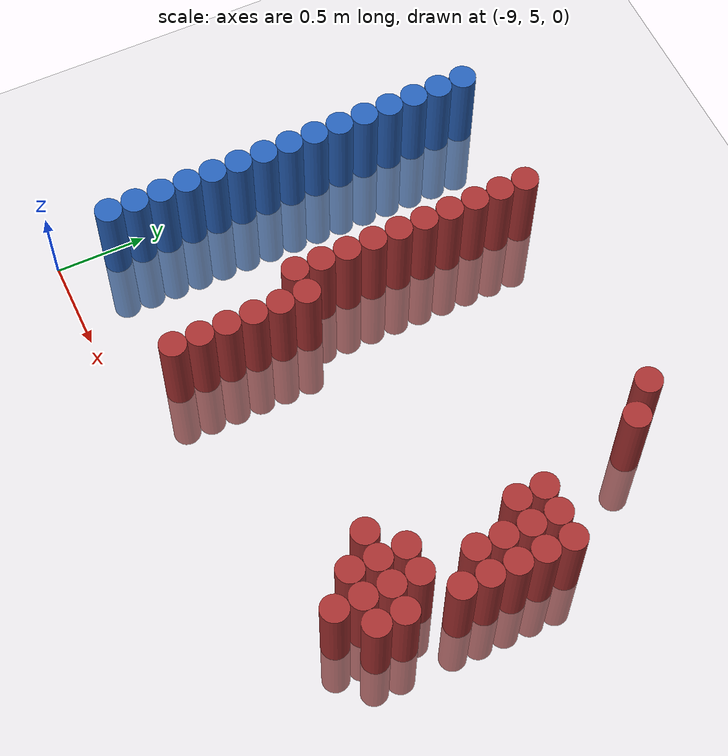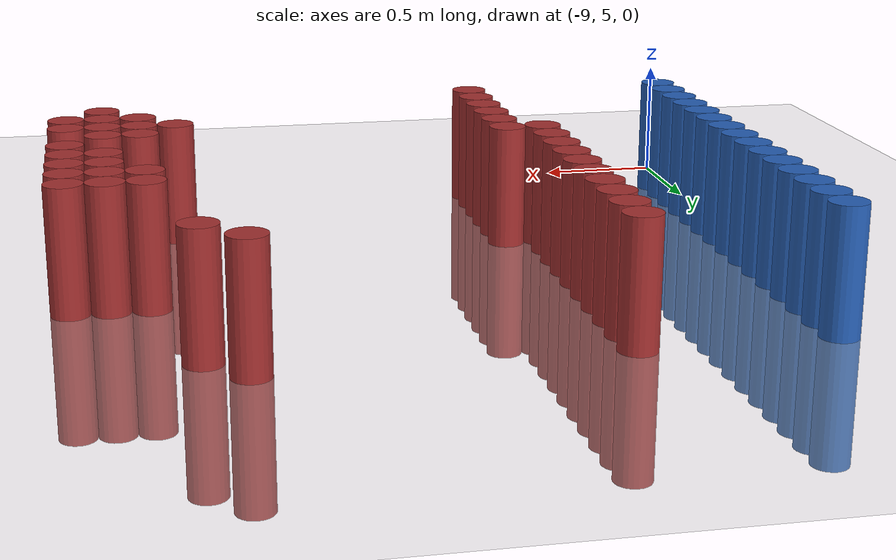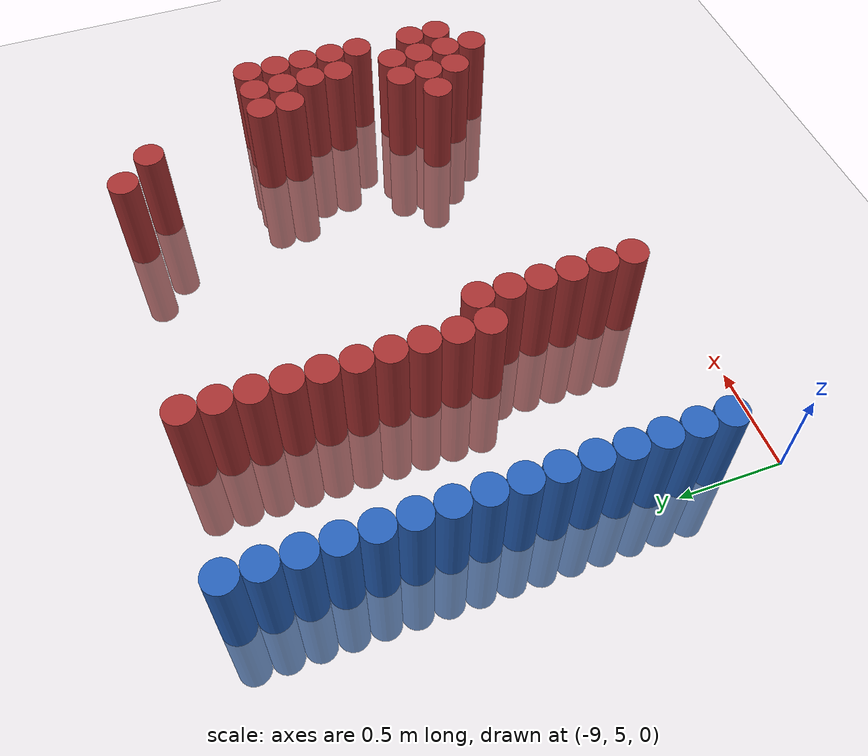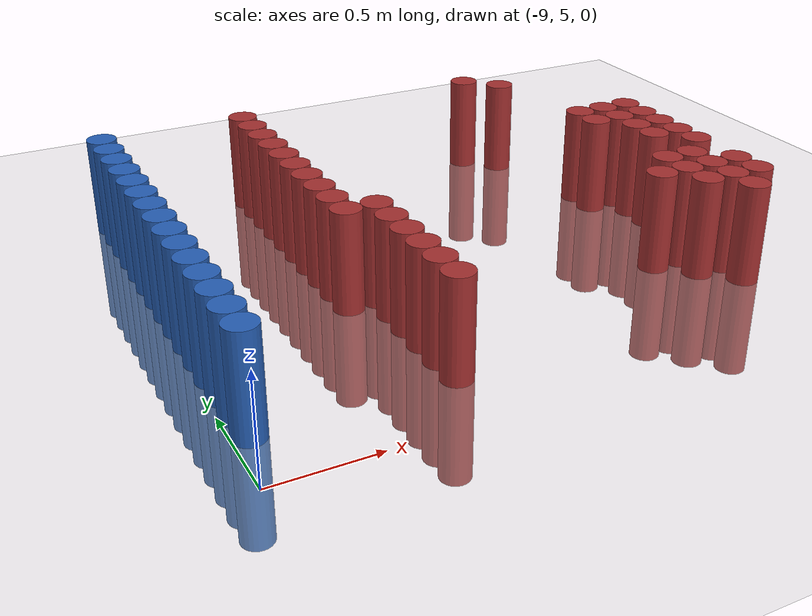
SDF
<sdf version="1.6">
 <world name="default">
  <model name="ground_plane">
   <static>1</static>
   <link name="link">
    <collision name="collision">
     <geometry><plane><normal>0 0 1</normal><size>100 100</size></plane></geometry>
     <surface><friction><ode><mu>100</mu><mu2>50</mu2></ode></friction></surface>
    </collision>
    <visual name="visual">
     <cast_shadows>0</cast_shadows>
     <geometry><plane><normal>0 0 1</normal><size>100 100</size></plane></geometry>
     <material>
      <script><uri>file://media/materials/scripts/gazebo.material</uri><name>Gazebo/Grey</name></script>
     </material>
    </visual>
   </link>
  </model>
  <model name="unit_cylinder_126">
   <static>1</static>
   <pose>-8.925000 5.325000 0.000000 0.000000 0.000000 0.000000</pose>
   <link name="link">
    <inertial>
     <mass>1</mass>
     <inertia><ixx>0.145833</ixx><ixy>0</ixy><ixz>0</ixz><iyy>0.145833</iyy><iyz>0</iyz><izz>0.125</izz></inertia>
    </inertial>
    <collision name="collision">
     <geometry><cylinder><radius>0.075000</radius><length>1</length></cylinder></geometry>
    </collision>
    <visual name="visual">
     <geometry><cylinder><radius>0.075000</radius><length>1</length></cylinder></geometry>
     <material>
      <ambient>0.152000 0.379000 0.720000 1</ambient>
      <diffuse>0.152000 0.379000 0.720000 1</diffuse>
     </material>
     <material>
      <script><name>Gazebo/Grey</name><uri>file://media/materials/scripts/gazebo.material</uri></script>
     </material>
    </visual>
   </link>
  </model>
  <model name="unit_cylinder_127">
   <static>1</static>
   <pose>-8.925000 5.475000 0.000000 0.000000 0.000000 0.000000</pose>
   <link name="link">
    <inertial>
     <mass>1</mass>
     <inertia><ixx>0.145833</ixx><ixy>0</ixy><ixz>0</ixz><iyy>0.145833</iyy><iyz>0</iyz><izz>0.125</izz></inertia>
    </inertial>
    <collision name="collision">
     <geometry><cylinder><radius>0.075000</radius><length>1</length></cylinder></geometry>
    </collision>
    <visual name="visual">
     <geometry><cylinder><radius>0.075000</radius><length>1</length></cylinder></geometry>
     <material>
      <ambient>0.152000 0.379000 0.720000 1</ambient>
      <diffuse>0.152000 0.379000 0.720000 1</diffuse>
     </material>
     <material>
      <script><name>Gazebo/Grey</name><uri>file://media/materials/scripts/gazebo.material</uri></script>
     </material>
    </visual>
   </link>
  </model>
  <model name="unit_cylinder_128">
   <static>1</static>
   <pose>-8.925000 5.625000 0.000000 0.000000 0.000000 0.000000</pose>
   <link name="link">
    <inertial>
     <mass>1</mass>
     <inertia><ixx>0.145833</ixx><ixy>0</ixy><ixz>0</ixz><iyy>0.145833</iyy><iyz>0</iyz><izz>0.125</izz></inertia>
    </inertial>
    <collision name="collision">
     <geometry><cylinder><radius>0.075000</radius><length>1</length></cylinder></geometry>
    </collision>
    <visual name="visual">
     <geometry><cylinder><radius>0.075000</radius><length>1</length></cylinder></geometry>
     <material>
      <ambient>0.152000 0.379000 0.720000 1</ambient>
      <diffuse>0.152000 0.379000 0.720000 1</diffuse>
     </material>
     <material>
      <script><name>Gazebo/Grey</name><uri>file://media/materials/scripts/gazebo.material</uri></script>
     </material>
    </visual>
   </link>
  </model>
  <model name="unit_cylinder_129">
   <static>1</static>
   <pose>-8.925000 5.775000 0.000000 0.000000 0.000000 0.000000</pose>
   <link name="link">
    <inertial>
     <mass>1</mass>
     <inertia><ixx>0.145833</ixx><ixy>0</ixy><ixz>0</ixz><iyy>0.145833</iyy><iyz>0</iyz><izz>0.125</izz></inertia>
    </inertial>
    <collision name="collision">
     <geometry><cylinder><radius>0.075000</radius><length>1</length></cylinder></geometry>
    </collision>
    <visual name="visual">
     <geometry><cylinder><radius>0.075000</radius><length>1</length></cylinder></geometry>
     <material>
      <ambient>0.152000 0.379000 0.720000 1</ambient>
      <diffuse>0.152000 0.379000 0.720000 1</diffuse>
     </material>
     <material>
      <script><name>Gazebo/Grey</name><uri>file://media/materials/scripts/gazebo.material</uri></script>
     </material>
    </visual>
   </link>
  </model>
  <model name="unit_cylinder_130">
   <static>1</static>
   <pose>-8.925000 5.925000 0.000000 0.000000 0.000000 0.000000</pose>
   <link name="link">
    <inertial>
     <mass>1</mass>
     <inertia><ixx>0.145833</ixx><ixy>0</ixy><ixz>0</ixz><iyy>0.145833</iyy><iyz>0</iyz><izz>0.125</izz></inertia>
    </inertial>
    <collision name="collision">
     <geometry><cylinder><radius>0.075000</radius><length>1</length></cylinder></geometry>
    </collision>
    <visual name="visual">
     <geometry><cylinder><radius>0.075000</radius><length>1</length></cylinder></geometry>
     <material>
      <ambient>0.152000 0.379000 0.720000 1</ambient>
      <diffuse>0.152000 0.379000 0.720000 1</diffuse>
     </material>
     <material>
      <script><name>Gazebo/Grey</name><uri>file://media/materials/scripts/gazebo.material</uri></script>
     </material>
    </visual>
   </link>
  </model>
  <model name="unit_cylinder_131">
   <static>1</static>
   <pose>-8.925000 6.075000 0.000000 0.000000 0.000000 0.000000</pose>
   <link name="link">
    <inertial>
     <mass>1</mass>
     <inertia><ixx>0.145833</ixx><ixy>0</ixy><ixz>0</ixz><iyy>0.145833</iyy><iyz>0</iyz><izz>0.125</izz></inertia>
    </inertial>
    <collision name="collision">
     <geometry><cylinder><radius>0.075000</radius><length>1</length></cylinder></geometry>
    </collision>
    <visual name="visual">
     <geometry><cylinder><radius>0.075000</radius><length>1</length></cylinder></geometry>
     <material>
      <ambient>0.152000 0.379000 0.720000 1</ambient>
      <diffuse>0.152000 0.379000 0.720000 1</diffuse>
     </material>
     <material>
      <script><name>Gazebo/Grey</name><uri>file://media/materials/scripts/gazebo.material</uri></script>
     </material>
    </visual>
   </link>
  </model>
  <model name="unit_cylinder_132">
   <static>1</static>
   <pose>-8.925000 6.225000 0.000000 0.000000 0.000000 0.000000</pose>
   <link name="link">
    <inertial>
     <mass>1</mass>
     <inertia><ixx>0.145833</ixx><ixy>0</ixy><ixz>0</ixz><iyy>0.145833</iyy><iyz>0</iyz><izz>0.125</izz></inertia>
    </inertial>
    <collision name="collision">
     <geometry><cylinder><radius>0.075000</radius><length>1</length></cylinder></geometry>
    </collision>
    <visual name="visual">
     <geometry><cylinder><radius>0.075000</radius><length>1</length></cylinder></geometry>
     <material>
      <ambient>0.152000 0.379000 0.720000 1</ambient>
      <diffuse>0.152000 0.379000 0.720000 1</diffuse>
     </material>
     <material>
      <script><name>Gazebo/Grey</name><uri>file://media/materials/scripts/gazebo.material</uri></script>
     </material>
    </visual>
   </link>
  </model>
  <model name="unit_cylinder_133">
   <static>1</static>
   <pose>-8.925000 6.375000 0.000000 0.000000 0.000000 0.000000</pose>
   <link name="link">
    <inertial>
     <mass>1</mass>
     <inertia><ixx>0.145833</ixx><ixy>0</ixy><ixz>0</ixz><iyy>0.145833</iyy><iyz>0</iyz><izz>0.125</izz></inertia>
    </inertial>
    <collision name="collision">
     <geometry><cylinder><radius>0.075000</radius><length>1</length></cylinder></geometry>
    </collision>
    <visual name="visual">
     <geometry><cylinder><radius>0.075000</radius><length>1</length></cylinder></geometry>
     <material>
      <ambient>0.152000 0.379000 0.720000 1</ambient>
      <diffuse>0.152000 0.379000 0.720000 1</diffuse>
     </material>
     <material>
      <script><name>Gazebo/Grey</name><uri>file://media/materials/scripts/gazebo.material</uri></script>
     </material>
    </visual>
   </link>
  </model>
  <model name="unit_cylinder_134">
   <static>1</static>
   <pose>-8.925000 6.525000 0.000000 0.000000 0.000000 0.000000</pose>
   <link name="link">
    <inertial>
     <mass>1</mass>
     <inertia><ixx>0.145833</ixx><ixy>0</ixy><ixz>0</ixz><iyy>0.145833</iyy><iyz>0</iyz><izz>0.125</izz></inertia>
    </inertial>
    <collision name="collision">
     <geometry><cylinder><radius>0.075000</radius><length>1</length></cylinder></geometry>
    </collision>
    <visual name="visual">
     <geometry><cylinder><radius>0.075000</radius><length>1</length></cylinder></geometry>
     <material>
      <ambient>0.152000 0.379000 0.720000 1</ambient>
      <diffuse>0.152000 0.379000 0.720000 1</diffuse>
     </material>
     <material>
      <script><name>Gazebo/Grey</name><uri>file://media/materials/scripts/gazebo.material</uri></script>
     </material>
    </visual>
   </link>
  </model>
  <model name="unit_cylinder_135">
   <static>1</static>
   <pose>-8.925000 6.675000 0.000000 0.000000 0.000000 0.000000</pose>
   <link name="link">
    <inertial>
     <mass>1</mass>
     <inertia><ixx>0.145833</ixx><ixy>0</ixy><ixz>0</ixz><iyy>0.145833</iyy><iyz>0</iyz><izz>0.125</izz></inertia>
    </inertial>
    <collision name="collision">
     <geometry><cylinder><radius>0.075000</radius><length>1</length></cylinder></geometry>
    </collision>
    <visual name="visual">
     <geometry><cylinder><radius>0.075000</radius><length>1</length></cylinder></geometry>
     <material>
      <ambient>0.152000 0.379000 0.720000 1</ambient>
      <diffuse>0.152000 0.379000 0.720000 1</diffuse>
     </material>
     <material>
      <script><name>Gazebo/Grey</name><uri>file://media/materials/scripts/gazebo.material</uri></script>
     </material>
    </visual>
   </link>
  </model>
  <model name="unit_cylinder_136">
   <static>1</static>
   <pose>-8.925000 6.825000 0.000000 0.000000 0.000000 0.000000</pose>
   <link name="link">
    <inertial>
     <mass>1</mass>
     <inertia><ixx>0.145833</ixx><ixy>0</ixy><ixz>0</ixz><iyy>0.145833</iyy><iyz>0</iyz><izz>0.125</izz></inertia>
    </inertial>
    <collision name="collision">
     <geometry><cylinder><radius>0.075000</radius><length>1</length></cylinder></geometry>
    </collision>
    <visual name="visual">
     <geometry><cylinder><radius>0.075000</radius><length>1</length></cylinder></geometry>
     <material>
      <ambient>0.152000 0.379000 0.720000 1</ambient>
      <diffuse>0.152000 0.379000 0.720000 1</diffuse>
     </material>
     <material>
      <script><name>Gazebo/Grey</name><uri>file://media/materials/scripts/gazebo.material</uri></script>
     </material>
    </visual>
   </link>
  </model>
  <model name="unit_cylinder_137">
   <static>1</static>
   <pose>-8.925000 6.975000 0.000000 0.000000 0.000000 0.000000</pose>
   <link name="link">
    <inertial>
     <mass>1</mass>
     <inertia><ixx>0.145833</ixx><ixy>0</ixy><ixz>0</ixz><iyy>0.145833</iyy><iyz>0</iyz><izz>0.125</izz></inertia>
    </inertial>
    <collision name="collision">
     <geometry><cylinder><radius>0.075000</radius><length>1</length></cylinder></geometry>
    </collision>
    <visual name="visual">
     <geometry><cylinder><radius>0.075000</radius><length>1</length></cylinder></geometry>
     <material>
      <ambient>0.152000 0.379000 0.720000 1</ambient>
      <diffuse>0.152000 0.379000 0.720000 1</diffuse>
     </material>
     <material>
      <script><name>Gazebo/Grey</name><uri>file://media/materials/scripts/gazebo.material</uri></script>
     </material>
    </visual>
   </link>
  </model>
  <model name="unit_cylinder_138">
   <static>1</static>
   <pose>-8.925000 7.125000 0.000000 0.000000 0.000000 0.000000</pose>
   <link name="link">
    <inertial>
     <mass>1</mass>
     <inertia><ixx>0.145833</ixx><ixy>0</ixy><ixz>0</ixz><iyy>0.145833</iyy><iyz>0</iyz><izz>0.125</izz></inertia>
    </inertial>
    <collision name="collision">
     <geometry><cylinder><radius>0.075000</radius><length>1</length></cylinder></geometry>
    </collision>
    <visual name="visual">
     <geometry><cylinder><radius>0.075000</radius><length>1</length></cylinder></geometry>
     <material>
      <ambient>0.152000 0.379000 0.720000 1</ambient>
      <diffuse>0.152000 0.379000 0.720000 1</diffuse>
     </material>
     <material>
      <script><name>Gazebo/Grey</name><uri>file://media/materials/scripts/gazebo.material</uri></script>
     </material>
    </visual>
   </link>
  </model>
  <model name="unit_cylinder_139">
   <static>1</static>
   <pose>-8.925000 7.275000 0.000000 0.000000 0.000000 0.000000</pose>
   <link name="link">
    <inertial>
     <mass>1</mass>
     <inertia><ixx>0.145833</ixx><ixy>0</ixy><ixz>0</ixz><iyy>0.145833</iyy><iyz>0</iyz><izz>0.125</izz></inertia>
    </inertial>
    <collision name="collision">
     <geometry><cylinder><radius>0.075000</radius><length>1</length></cylinder></geometry>
    </collision>
    <visual name="visual">
     <geometry><cylinder><radius>0.075000</radius><length>1</length></cylinder></geometry>
     <material>
      <ambient>0.152000 0.379000 0.720000 1</ambient>
      <diffuse>0.152000 0.379000 0.720000 1</diffuse>
     </material>
     <material>
      <script><name>Gazebo/Grey</name><uri>file://media/materials/scripts/gazebo.material</uri></script>
     </material>
    </visual>
   </link>
  </model>
  <model name="unit_cylinder_140">
   <static>1</static>
   <pose>-8.925000 7.425000 0.000000 0.000000 0.000000 0.000000</pose>
   <link name="link">
    <inertial>
     <mass>1</mass>
     <inertia><ixx>0.145833</ixx><ixy>0</ixy><ixz>0</ixz><iyy>0.145833</iyy><iyz>0</iyz><izz>0.125</izz></inertia>
    </inertial>
    <collision name="collision">
     <geometry><cylinder><radius>0.075000</radius><length>1</length></cylinder></geometry>
    </collision>
    <visual name="visual">
     <geometry><cylinder><radius>0.075000</radius><length>1</length></cylinder></geometry>
     <material>
      <ambient>0.152000 0.379000 0.720000 1</ambient>
      <diffuse>0.152000 0.379000 0.720000 1</diffuse>
     </material>
     <material>
      <script><name>Gazebo/Grey</name><uri>file://media/materials/scripts/gazebo.material</uri></script>
     </material>
    </visual>
   </link>
  </model>
  <model name="unit_cylinder_164">
   <static>1</static>
   <pose>-8.175000 6.075000 0.000000 0.000000 0.000000 0.000000</pose>
   <link name="link">
    <inertial>
     <mass>1</mass>
     <inertia><ixx>0.145833</ixx><ixy>0</ixy><ixz>0</ixz><iyy>0.145833</iyy><iyz>0</iyz><izz>0.125</izz></inertia>
    </inertial>
    <collision name="collision">
     <geometry><cylinder><radius>0.075000</radius><length>1</length></cylinder></geometry>
    </collision>
    <visual name="visual">
     <geometry><cylinder><radius>0.075000</radius><length>1</length></cylinder></geometry>
     <material>
      <ambient>0.648000 0.192000 0.192000 1</ambient>
      <diffuse>0.648000 0.192000 0.192000 1</diffuse>
     </material>
     <material>
      <script><name>Gazebo/Grey</name><uri>file://media/materials/scripts/gazebo.material</uri></script>
     </material>
    </visual>
   </link>
  </model>
  <model name="unit_cylinder_165">
   <static>1</static>
   <pose>-8.175000 6.225000 0.000000 0.000000 0.000000 0.000000</pose>
   <link name="link">
    <inertial>
     <mass>1</mass>
     <inertia><ixx>0.145833</ixx><ixy>0</ixy><ixz>0</ixz><iyy>0.145833</iyy><iyz>0</iyz><izz>0.125</izz></inertia>
    </inertial>
    <collision name="collision">
     <geometry><cylinder><radius>0.075000</radius><length>1</length></cylinder></geometry>
    </collision>
    <visual name="visual">
     <geometry><cylinder><radius>0.075000</radius><length>1</length></cylinder></geometry>
     <material>
      <ambient>0.648000 0.192000 0.192000 1</ambient>
      <diffuse>0.648000 0.192000 0.192000 1</diffuse>
     </material>
     <material>
      <script><name>Gazebo/Grey</name><uri>file://media/materials/scripts/gazebo.material</uri></script>
     </material>
    </visual>
   </link>
  </model>
  <model name="unit_cylinder_166">
   <static>1</static>
   <pose>-8.175000 6.375000 0.000000 0.000000 0.000000 0.000000</pose>
   <link name="link">
    <inertial>
     <mass>1</mass>
     <inertia><ixx>0.145833</ixx><ixy>0</ixy><ixz>0</ixz><iyy>0.145833</iyy><iyz>0</iyz><izz>0.125</izz></inertia>
    </inertial>
    <collision name="collision">
     <geometry><cylinder><radius>0.075000</radius><length>1</length></cylinder></geometry>
    </collision>
    <visual name="visual">
     <geometry><cylinder><radius>0.075000</radius><length>1</length></cylinder></geometry>
     <material>
      <ambient>0.648000 0.192000 0.192000 1</ambient>
      <diffuse>0.648000 0.192000 0.192000 1</diffuse>
     </material>
     <material>
      <script><name>Gazebo/Grey</name><uri>file://media/materials/scripts/gazebo.material</uri></script>
     </material>
    </visual>
   </link>
  </model>
  <model name="unit_cylinder_167">
   <static>1</static>
   <pose>-8.175000 6.525000 0.000000 0.000000 0.000000 0.000000</pose>
   <link name="link">
    <inertial>
     <mass>1</mass>
     <inertia><ixx>0.145833</ixx><ixy>0</ixy><ixz>0</ixz><iyy>0.145833</iyy><iyz>0</iyz><izz>0.125</izz></inertia>
    </inertial>
    <collision name="collision">
     <geometry><cylinder><radius>0.075000</radius><length>1</length></cylinder></geometry>
    </collision>
    <visual name="visual">
     <geometry><cylinder><radius>0.075000</radius><length>1</length></cylinder></geometry>
     <material>
      <ambient>0.648000 0.192000 0.192000 1</ambient>
      <diffuse>0.648000 0.192000 0.192000 1</diffuse>
     </material>
     <material>
      <script><name>Gazebo/Grey</name><uri>file://media/materials/scripts/gazebo.material</uri></script>
     </material>
    </visual>
   </link>
  </model>
  <model name="unit_cylinder_168">
   <static>1</static>
   <pose>-8.175000 6.675000 0.000000 0.000000 0.000000 0.000000</pose>
   <link name="link">
    <inertial>
     <mass>1</mass>
     <inertia><ixx>0.145833</ixx><ixy>0</ixy><ixz>0</ixz><iyy>0.145833</iyy><iyz>0</iyz><izz>0.125</izz></inertia>
    </inertial>
    <collision name="collision">
     <geometry><cylinder><radius>0.075000</radius><length>1</length></cylinder></geometry>
    </collision>
    <visual name="visual">
     <geometry><cylinder><radius>0.075000</radius><length>1</length></cylinder></geometry>
     <material>
      <ambient>0.648000 0.192000 0.192000 1</ambient>
      <diffuse>0.648000 0.192000 0.192000 1</diffuse>
     </material>
     <material>
      <script><name>Gazebo/Grey</name><uri>file://media/materials/scripts/gazebo.material</uri></script>
     </material>
    </visual>
   </link>
  </model>
  <model name="unit_cylinder_169">
   <static>1</static>
   <pose>-8.175000 6.825000 0.000000 0.000000 0.000000 0.000000</pose>
   <link name="link">
    <inertial>
     <mass>1</mass>
     <inertia><ixx>0.145833</ixx><ixy>0</ixy><ixz>0</ixz><iyy>0.145833</iyy><iyz>0</iyz><izz>0.125</izz></inertia>
    </inertial>
    <collision name="collision">
     <geometry><cylinder><radius>0.075000</radius><length>1</length></cylinder></geometry>
    </collision>
    <visual name="visual">
     <geometry><cylinder><radius>0.075000</radius><length>1</length></cylinder></geometry>
     <material>
      <ambient>0.648000 0.192000 0.192000 1</ambient>
      <diffuse>0.648000 0.192000 0.192000 1</diffuse>
     </material>
     <material>
      <script><name>Gazebo/Grey</name><uri>file://media/materials/scripts/gazebo.material</uri></script>
     </material>
    </visual>
   </link>
  </model>
  <model name="unit_cylinder_170">
   <static>1</static>
   <pose>-8.175000 6.975000 0.000000 0.000000 0.000000 0.000000</pose>
   <link name="link">
    <inertial>
     <mass>1</mass>
     <inertia><ixx>0.145833</ixx><ixy>0</ixy><ixz>0</ixz><iyy>0.145833</iyy><iyz>0</iyz><izz>0.125</izz></inertia>
    </inertial>
    <collision name="collision">
     <geometry><cylinder><radius>0.075000</radius><length>1</length></cylinder></geometry>
    </collision>
    <visual name="visual">
     <geometry><cylinder><radius>0.075000</radius><length>1</length></cylinder></geometry>
     <material>
      <ambient>0.648000 0.192000 0.192000 1</ambient>
      <diffuse>0.648000 0.192000 0.192000 1</diffuse>
     </material>
     <material>
      <script><name>Gazebo/Grey</name><uri>file://media/materials/scripts/gazebo.material</uri></script>
     </material>
    </visual>
   </link>
  </model>
  <model name="unit_cylinder_171">
   <static>1</static>
   <pose>-8.175000 7.125000 0.000000 0.000000 0.000000 0.000000</pose>
   <link name="link">
    <inertial>
     <mass>1</mass>
     <inertia><ixx>0.145833</ixx><ixy>0</ixy><ixz>0</ixz><iyy>0.145833</iyy><iyz>0</iyz><izz>0.125</izz></inertia>
    </inertial>
    <collision name="collision">
     <geometry><cylinder><radius>0.075000</radius><length>1</length></cylinder></geometry>
    </collision>
    <visual name="visual">
     <geometry><cylinder><radius>0.075000</radius><length>1</length></cylinder></geometry>
     <material>
      <ambient>0.648000 0.192000 0.192000 1</ambient>
      <diffuse>0.648000 0.192000 0.192000 1</diffuse>
     </material>
     <material>
      <script><name>Gazebo/Grey</name><uri>file://media/materials/scripts/gazebo.material</uri></script>
     </material>
    </visual>
   </link>
  </model>
  <model name="unit_cylinder_172">
   <static>1</static>
   <pose>-8.175000 7.275000 0.000000 0.000000 0.000000 0.000000</pose>
   <link name="link">
    <inertial>
     <mass>1</mass>
     <inertia><ixx>0.145833</ixx><ixy>0</ixy><ixz>0</ixz><iyy>0.145833</iyy><iyz>0</iyz><izz>0.125</izz></inertia>
    </inertial>
    <collision name="collision">
     <geometry><cylinder><radius>0.075000</radius><length>1</length></cylinder></geometry>
    </collision>
    <visual name="visual">
     <geometry><cylinder><radius>0.075000</radius><length>1</length></cylinder></geometry>
     <material>
      <ambient>0.648000 0.192000 0.192000 1</ambient>
      <diffuse>0.648000 0.192000 0.192000 1</diffuse>
     </material>
     <material>
      <script><name>Gazebo/Grey</name><uri>file://media/materials/scripts/gazebo.material</uri></script>
     </material>
    </visual>
   </link>
  </model>
  <model name="unit_cylinder_173">
   <static>1</static>
   <pose>-8.175000 7.425000 0.000000 0.000000 0.000000 0.000000</pose>
   <link name="link">
    <inertial>
     <mass>1</mass>
     <inertia><ixx>0.145833</ixx><ixy>0</ixy><ixz>0</ixz><iyy>0.145833</iyy><iyz>0</iyz><izz>0.125</izz></inertia>
    </inertial>
    <collision name="collision">
     <geometry><cylinder><radius>0.075000</radius><length>1</length></cylinder></geometry>
    </collision>
    <visual name="visual">
     <geometry><cylinder><radius>0.075000</radius><length>1</length></cylinder></geometry>
     <material>
      <ambient>0.648000 0.192000 0.192000 1</ambient>
      <diffuse>0.648000 0.192000 0.192000 1</diffuse>
     </material>
     <material>
      <script><name>Gazebo/Grey</name><uri>file://media/materials/scripts/gazebo.material</uri></script>
     </material>
    </visual>
   </link>
  </model>
  <model name="unit_cylinder_186">
   <static>1</static>
   <pose>-8.025000 5.325000 0.000000 0.000000 0.000000 0.000000</pose>
   <link name="link">
    <inertial>
     <mass>1</mass>
     <inertia><ixx>0.145833</ixx><ixy>0</ixy><ixz>0</ixz><iyy>0.145833</iyy><iyz>0</iyz><izz>0.125</izz></inertia>
    </inertial>
    <collision name="collision">
     <geometry><cylinder><radius>0.075000</radius><length>1</length></cylinder></geometry>
    </collision>
    <visual name="visual">
     <geometry><cylinder><radius>0.075000</radius><length>1</length></cylinder></geometry>
     <material>
      <ambient>0.648000 0.192000 0.192000 1</ambient>
      <diffuse>0.648000 0.192000 0.192000 1</diffuse>
     </material>
     <material>
      <script><name>Gazebo/Grey</name><uri>file://media/materials/scripts/gazebo.material</uri></script>
     </material>
    </visual>
   </link>
  </model>
  <model name="unit_cylinder_187">
   <static>1</static>
   <pose>-8.025000 5.475000 0.000000 0.000000 0.000000 0.000000</pose>
   <link name="link">
    <inertial>
     <mass>1</mass>
     <inertia><ixx>0.145833</ixx><ixy>0</ixy><ixz>0</ixz><iyy>0.145833</iyy><iyz>0</iyz><izz>0.125</izz></inertia>
    </inertial>
    <collision name="collision">
     <geometry><cylinder><radius>0.075000</radius><length>1</length></cylinder></geometry>
    </collision>
    <visual name="visual">
     <geometry><cylinder><radius>0.075000</radius><length>1</length></cylinder></geometry>
     <material>
      <ambient>0.648000 0.192000 0.192000 1</ambient>
      <diffuse>0.648000 0.192000 0.192000 1</diffuse>
     </material>
     <material>
      <script><name>Gazebo/Grey</name><uri>file://media/materials/scripts/gazebo.material</uri></script>
     </material>
    </visual>
   </link>
  </model>
  <model name="unit_cylinder_188">
   <static>1</static>
   <pose>-8.025000 5.625000 0.000000 0.000000 0.000000 0.000000</pose>
   <link name="link">
    <inertial>
     <mass>1</mass>
     <inertia><ixx>0.145833</ixx><ixy>0</ixy><ixz>0</ixz><iyy>0.145833</iyy><iyz>0</iyz><izz>0.125</izz></inertia>
    </inertial>
    <collision name="collision">
     <geometry><cylinder><radius>0.075000</radius><length>1</length></cylinder></geometry>
    </collision>
    <visual name="visual">
     <geometry><cylinder><radius>0.075000</radius><length>1</length></cylinder></geometry>
     <material>
      <ambient>0.648000 0.192000 0.192000 1</ambient>
      <diffuse>0.648000 0.192000 0.192000 1</diffuse>
     </material>
     <material>
      <script><name>Gazebo/Grey</name><uri>file://media/materials/scripts/gazebo.material</uri></script>
     </material>
    </visual>
   </link>
  </model>
  <model name="unit_cylinder_189">
   <static>1</static>
   <pose>-8.025000 5.775000 0.000000 0.000000 0.000000 0.000000</pose>
   <link name="link">
    <inertial>
     <mass>1</mass>
     <inertia><ixx>0.145833</ixx><ixy>0</ixy><ixz>0</ixz><iyy>0.145833</iyy><iyz>0</iyz><izz>0.125</izz></inertia>
    </inertial>
    <collision name="collision">
     <geometry><cylinder><radius>0.075000</radius><length>1</length></cylinder></geometry>
    </collision>
    <visual name="visual">
     <geometry><cylinder><radius>0.075000</radius><length>1</length></cylinder></geometry>
     <material>
      <ambient>0.648000 0.192000 0.192000 1</ambient>
      <diffuse>0.648000 0.192000 0.192000 1</diffuse>
     </material>
     <material>
      <script><name>Gazebo/Grey</name><uri>file://media/materials/scripts/gazebo.material</uri></script>
     </material>
    </visual>
   </link>
  </model>
  <model name="unit_cylinder_190">
   <static>1</static>
   <pose>-8.025000 5.925000 0.000000 0.000000 0.000000 0.000000</pose>
   <link name="link">
    <inertial>
     <mass>1</mass>
     <inertia><ixx>0.145833</ixx><ixy>0</ixy><ixz>0</ixz><iyy>0.145833</iyy><iyz>0</iyz><izz>0.125</izz></inertia>
    </inertial>
    <collision name="collision">
     <geometry><cylinder><radius>0.075000</radius><length>1</length></cylinder></geometry>
    </collision>
    <visual name="visual">
     <geometry><cylinder><radius>0.075000</radius><length>1</length></cylinder></geometry>
     <material>
      <ambient>0.648000 0.192000 0.192000 1</ambient>
      <diffuse>0.648000 0.192000 0.192000 1</diffuse>
     </material>
     <material>
      <script><name>Gazebo/Grey</name><uri>file://media/materials/scripts/gazebo.material</uri></script>
     </material>
    </visual>
   </link>
  </model>
  <model name="unit_cylinder_191">
   <static>1</static>
   <pose>-8.025000 6.075000 0.000000 0.000000 0.000000 0.000000</pose>
   <link name="link">
    <inertial>
     <mass>1</mass>
     <inertia><ixx>0.145833</ixx><ixy>0</ixy><ixz>0</ixz><iyy>0.145833</iyy><iyz>0</iyz><izz>0.125</izz></inertia>
    </inertial>
    <collision name="collision">
     <geometry><cylinder><radius>0.075000</radius><length>1</length></cylinder></geometry>
    </collision>
    <visual name="visual">
     <geometry><cylinder><radius>0.075000</radius><length>1</length></cylinder></geometry>
     <material>
      <ambient>0.648000 0.192000 0.192000 1</ambient>
      <diffuse>0.648000 0.192000 0.192000 1</diffuse>
     </material>
     <material>
      <script><name>Gazebo/Grey</name><uri>file://media/materials/scripts/gazebo.material</uri></script>
     </material>
    </visual>
   </link>
  </model>
  <model name="unit_cylinder_197">
   <static>1</static>
   <pose>-6.825000 7.425000 0.000000 0.000000 0.000000 0.000000</pose>
   <link name="link">
    <inertial>
     <mass>1</mass>
     <inertia><ixx>0.145833</ixx><ixy>0</ixy><ixz>0</ixz><iyy>0.145833</iyy><iyz>0</iyz><izz>0.125</izz></inertia>
    </inertial>
    <collision name="collision">
     <geometry><cylinder><radius>0.075000</radius><length>1</length></cylinder></geometry>
    </collision>
    <visual name="visual">
     <geometry><cylinder><radius>0.075000</radius><length>1</length></cylinder></geometry>
     <material>
      <ambient>0.648000 0.192000 0.192000 1</ambient>
      <diffuse>0.648000 0.192000 0.192000 1</diffuse>
     </material>
     <material>
      <script><name>Gazebo/Grey</name><uri>file://media/materials/scripts/gazebo.material</uri></script>
     </material>
    </visual>
   </link>
  </model>
  <model name="unit_cylinder_199">
   <static>1</static>
   <pose>-6.675000 5.775000 0.000000 0.000000 0.000000 0.000000</pose>
   <link name="link">
    <inertial>
     <mass>1</mass>
     <inertia><ixx>0.145833</ixx><ixy>0</ixy><ixz>0</ixz><iyy>0.145833</iyy><iyz>0</iyz><izz>0.125</izz></inertia>
    </inertial>
    <collision name="collision">
     <geometry><cylinder><radius>0.075000</radius><length>1</length></cylinder></geometry>
    </collision>
    <visual name="visual">
     <geometry><cylinder><radius>0.075000</radius><length>1</length></cylinder></geometry>
     <material>
      <ambient>0.648000 0.192000 0.192000 1</ambient>
      <diffuse>0.648000 0.192000 0.192000 1</diffuse>
     </material>
     <material>
      <script><name>Gazebo/Grey</name><uri>file://media/materials/scripts/gazebo.material</uri></script>
     </material>
    </visual>
   </link>
  </model>
  <model name="unit_cylinder_200">
   <static>1</static>
   <pose>-6.675000 7.275000 0.000000 0.000000 0.000000 0.000000</pose>
   <link name="link">
    <inertial>
     <mass>1</mass>
     <inertia><ixx>0.145833</ixx><ixy>0</ixy><ixz>0</ixz><iyy>0.145833</iyy><iyz>0</iyz><izz>0.125</izz></inertia>
    </inertial>
    <collision name="collision">
     <geometry><cylinder><radius>0.075000</radius><length>1</length></cylinder></geometry>
    </collision>
    <visual name="visual">
     <geometry><cylinder><radius>0.075000</radius><length>1</length></cylinder></geometry>
     <material>
      <ambient>0.648000 0.192000 0.192000 1</ambient>
      <diffuse>0.648000 0.192000 0.192000 1</diffuse>
     </material>
     <material>
      <script><name>Gazebo/Grey</name><uri>file://media/materials/scripts/gazebo.material</uri></script>
     </material>
    </visual>
   </link>
  </model>
  <model name="unit_cylinder_205">
   <static>1</static>
   <pose>-6.525000 5.625000 0.000000 0.000000 0.000000 0.000000</pose>
   <link name="link">
    <inertial>
     <mass>1</mass>
     <inertia><ixx>0.145833</ixx><ixy>0</ixy><ixz>0</ixz><iyy>0.145833</iyy><iyz>0</iyz><izz>0.125</izz></inertia>
    </inertial>
    <collision name="collision">
     <geometry><cylinder><radius>0.075000</radius><length>1</length></cylinder></geometry>
    </collision>
    <visual name="visual">
     <geometry><cylinder><radius>0.075000</radius><length>1</length></cylinder></geometry>
     <material>
      <ambient>0.648000 0.192000 0.192000 1</ambient>
      <diffuse>0.648000 0.192000 0.192000 1</diffuse>
     </material>
     <material>
      <script><name>Gazebo/Grey</name><uri>file://media/materials/scripts/gazebo.material</uri></script>
     </material>
    </visual>
   </link>
  </model>
  <model name="unit_cylinder_206">
   <static>1</static>
   <pose>-6.525000 5.775000 0.000000 0.000000 0.000000 0.000000</pose>
   <link name="link">
    <inertial>
     <mass>1</mass>
     <inertia><ixx>0.145833</ixx><ixy>0</ixy><ixz>0</ixz><iyy>0.145833</iyy><iyz>0</iyz><izz>0.125</izz></inertia>
    </inertial>
    <collision name="collision">
     <geometry><cylinder><radius>0.075000</radius><length>1</length></cylinder></geometry>
    </collision>
    <visual name="visual">
     <geometry><cylinder><radius>0.075000</radius><length>1</length></cylinder></geometry>
     <material>
      <ambient>0.648000 0.192000 0.192000 1</ambient>
      <diffuse>0.648000 0.192000 0.192000 1</diffuse>
     </material>
     <material>
      <script><name>Gazebo/Grey</name><uri>file://media/materials/scripts/gazebo.material</uri></script>
     </material>
    </visual>
   </link>
  </model>
  <model name="unit_cylinder_207">
   <static>1</static>
   <pose>-6.525000 5.925000 0.000000 0.000000 0.000000 0.000000</pose>
   <link name="link">
    <inertial>
     <mass>1</mass>
     <inertia><ixx>0.145833</ixx><ixy>0</ixy><ixz>0</ixz><iyy>0.145833</iyy><iyz>0</iyz><izz>0.125</izz></inertia>
    </inertial>
    <collision name="collision">
     <geometry><cylinder><radius>0.075000</radius><length>1</length></cylinder></geometry>
    </collision>
    <visual name="visual">
     <geometry><cylinder><radius>0.075000</radius><length>1</length></cylinder></geometry>
     <material>
      <ambient>0.648000 0.192000 0.192000 1</ambient>
      <diffuse>0.648000 0.192000 0.192000 1</diffuse>
     </material>
     <material>
      <script><name>Gazebo/Grey</name><uri>file://media/materials/scripts/gazebo.material</uri></script>
     </material>
    </visual>
   </link>
  </model>
  <model name="unit_cylinder_208">
   <static>1</static>
   <pose>-6.525000 6.525000 0.000000 0.000000 0.000000 0.000000</pose>
   <link name="link">
    <inertial>
     <mass>1</mass>
     <inertia><ixx>0.145833</ixx><ixy>0</ixy><ixz>0</ixz><iyy>0.145833</iyy><iyz>0</iyz><izz>0.125</izz></inertia>
    </inertial>
    <collision name="collision">
     <geometry><cylinder><radius>0.075000</radius><length>1</length></cylinder></geometry>
    </collision>
    <visual name="visual">
     <geometry><cylinder><radius>0.075000</radius><length>1</length></cylinder></geometry>
     <material>
      <ambient>0.648000 0.192000 0.192000 1</ambient>
      <diffuse>0.648000 0.192000 0.192000 1</diffuse>
     </material>
     <material>
      <script><name>Gazebo/Grey</name><uri>file://media/materials/scripts/gazebo.material</uri></script>
     </material>
    </visual>
   </link>
  </model>
  <model name="unit_cylinder_209">
   <static>1</static>
   <pose>-6.525000 6.675000 0.000000 0.000000 0.000000 0.000000</pose>
   <link name="link">
    <inertial>
     <mass>1</mass>
     <inertia><ixx>0.145833</ixx><ixy>0</ixy><ixz>0</ixz><iyy>0.145833</iyy><iyz>0</iyz><izz>0.125</izz></inertia>
    </inertial>
    <collision name="collision">
     <geometry><cylinder><radius>0.075000</radius><length>1</length></cylinder></geometry>
    </collision>
    <visual name="visual">
     <geometry><cylinder><radius>0.075000</radius><length>1</length></cylinder></geometry>
     <material>
      <ambient>0.648000 0.192000 0.192000 1</ambient>
      <diffuse>0.648000 0.192000 0.192000 1</diffuse>
     </material>
     <material>
      <script><name>Gazebo/Grey</name><uri>file://media/materials/scripts/gazebo.material</uri></script>
     </material>
    </visual>
   </link>
  </model>
  <model name="unit_cylinder_215">
   <static>1</static>
   <pose>-6.375000 5.475000 0.000000 0.000000 0.000000 0.000000</pose>
   <link name="link">
    <inertial>
     <mass>1</mass>
     <inertia><ixx>0.145833</ixx><ixy>0</ixy><ixz>0</ixz><iyy>0.145833</iyy><iyz>0</iyz><izz>0.125</izz></inertia>
    </inertial>
    <collision name="collision">
     <geometry><cylinder><radius>0.075000</radius><length>1</length></cylinder></geometry>
    </collision>
    <visual name="visual">
     <geometry><cylinder><radius>0.075000</radius><length>1</length></cylinder></geometry>
     <material>
      <ambient>0.648000 0.192000 0.192000 1</ambient>
      <diffuse>0.648000 0.192000 0.192000 1</diffuse>
     </material>
     <material>
      <script><name>Gazebo/Grey</name><uri>file://media/materials/scripts/gazebo.material</uri></script>
     </material>
    </visual>
   </link>
  </model>
  <model name="unit_cylinder_216">
   <static>1</static>
   <pose>-6.375000 5.625000 0.000000 0.000000 0.000000 0.000000</pose>
   <link name="link">
    <inertial>
     <mass>1</mass>
     <inertia><ixx>0.145833</ixx><ixy>0</ixy><ixz>0</ixz><iyy>0.145833</iyy><iyz>0</iyz><izz>0.125</izz></inertia>
    </inertial>
    <collision name="collision">
     <geometry><cylinder><radius>0.075000</radius><length>1</length></cylinder></geometry>
    </collision>
    <visual name="visual">
     <geometry><cylinder><radius>0.075000</radius><length>1</length></cylinder></geometry>
     <material>
      <ambient>0.648000 0.192000 0.192000 1</ambient>
      <diffuse>0.648000 0.192000 0.192000 1</diffuse>
     </material>
     <material>
      <script><name>Gazebo/Grey</name><uri>file://media/materials/scripts/gazebo.material</uri></script>
     </material>
    </visual>
   </link>
  </model>
  <model name="unit_cylinder_217">
   <static>1</static>
   <pose>-6.375000 5.775000 0.000000 0.000000 0.000000 0.000000</pose>
   <link name="link">
    <inertial>
     <mass>1</mass>
     <inertia><ixx>0.145833</ixx><ixy>0</ixy><ixz>0</ixz><iyy>0.145833</iyy><iyz>0</iyz><izz>0.125</izz></inertia>
    </inertial>
    <collision name="collision">
     <geometry><cylinder><radius>0.075000</radius><length>1</length></cylinder></geometry>
    </collision>
    <visual name="visual">
     <geometry><cylinder><radius>0.075000</radius><length>1</length></cylinder></geometry>
     <material>
      <ambient>0.648000 0.192000 0.192000 1</ambient>
      <diffuse>0.648000 0.192000 0.192000 1</diffuse>
     </material>
     <material>
      <script><name>Gazebo/Grey</name><uri>file://media/materials/scripts/gazebo.material</uri></script>
     </material>
    </visual>
   </link>
  </model>
  <model name="unit_cylinder_218">
   <static>1</static>
   <pose>-6.375000 5.925000 0.000000 0.000000 0.000000 0.000000</pose>
   <link name="link">
    <inertial>
     <mass>1</mass>
     <inertia><ixx>0.145833</ixx><ixy>0</ixy><ixz>0</ixz><iyy>0.145833</iyy><iyz>0</iyz><izz>0.125</izz></inertia>
    </inertial>
    <collision name="collision">
     <geometry><cylinder><radius>0.075000</radius><length>1</length></cylinder></geometry>
    </collision>
    <visual name="visual">
     <geometry><cylinder><radius>0.075000</radius><length>1</length></cylinder></geometry>
     <material>
      <ambient>0.648000 0.192000 0.192000 1</ambient>
      <diffuse>0.648000 0.192000 0.192000 1</diffuse>
     </material>
     <material>
      <script><name>Gazebo/Grey</name><uri>file://media/materials/scripts/gazebo.material</uri></script>
     </material>
    </visual>
   </link>
  </model>
  <model name="unit_cylinder_219">
   <static>1</static>
   <pose>-6.375000 6.225000 0.000000 0.000000 0.000000 0.000000</pose>
   <link name="link">
    <inertial>
     <mass>1</mass>
     <inertia><ixx>0.145833</ixx><ixy>0</ixy><ixz>0</ixz><iyy>0.145833</iyy><iyz>0</iyz><izz>0.125</izz></inertia>
    </inertial>
    <collision name="collision">
     <geometry><cylinder><radius>0.075000</radius><length>1</length></cylinder></geometry>
    </collision>
    <visual name="visual">
     <geometry><cylinder><radius>0.075000</radius><length>1</length></cylinder></geometry>
     <material>
      <ambient>0.648000 0.192000 0.192000 1</ambient>
      <diffuse>0.648000 0.192000 0.192000 1</diffuse>
     </material>
     <material>
      <script><name>Gazebo/Grey</name><uri>file://media/materials/scripts/gazebo.material</uri></script>
     </material>
    </visual>
   </link>
  </model>
  <model name="unit_cylinder_220">
   <static>1</static>
   <pose>-6.375000 6.375000 0.000000 0.000000 0.000000 0.000000</pose>
   <link name="link">
    <inertial>
     <mass>1</mass>
     <inertia><ixx>0.145833</ixx><ixy>0</ixy><ixz>0</ixz><iyy>0.145833</iyy><iyz>0</iyz><izz>0.125</izz></inertia>
    </inertial>
    <collision name="collision">
     <geometry><cylinder><radius>0.075000</radius><length>1</length></cylinder></geometry>
    </collision>
    <visual name="visual">
     <geometry><cylinder><radius>0.075000</radius><length>1</length></cylinder></geometry>
     <material>
      <ambient>0.648000 0.192000 0.192000 1</ambient>
      <diffuse>0.648000 0.192000 0.192000 1</diffuse>
     </material>
     <material>
      <script><name>Gazebo/Grey</name><uri>file://media/materials/scripts/gazebo.material</uri></script>
     </material>
    </visual>
   </link>
  </model>
  <model name="unit_cylinder_221">
   <static>1</static>
   <pose>-6.375000 6.525000 0.000000 0.000000 0.000000 0.000000</pose>
   <link name="link">
    <inertial>
     <mass>1</mass>
     <inertia><ixx>0.145833</ixx><ixy>0</ixy><ixz>0</ixz><iyy>0.145833</iyy><iyz>0</iyz><izz>0.125</izz></inertia>
    </inertial>
    <collision name="collision">
     <geometry><cylinder><radius>0.075000</radius><length>1</length></cylinder></geometry>
    </collision>
    <visual name="visual">
     <geometry><cylinder><radius>0.075000</radius><length>1</length></cylinder></geometry>
     <material>
      <ambient>0.648000 0.192000 0.192000 1</ambient>
      <diffuse>0.648000 0.192000 0.192000 1</diffuse>
     </material>
     <material>
      <script><name>Gazebo/Grey</name><uri>file://media/materials/scripts/gazebo.material</uri></script>
     </material>
    </visual>
   </link>
  </model>
  <model name="unit_cylinder_222">
   <static>1</static>
   <pose>-6.375000 6.675000 0.000000 0.000000 0.000000 0.000000</pose>
   <link name="link">
    <inertial>
     <mass>1</mass>
     <inertia><ixx>0.145833</ixx><ixy>0</ixy><ixz>0</ixz><iyy>0.145833</iyy><iyz>0</iyz><izz>0.125</izz></inertia>
    </inertial>
    <collision name="collision">
     <geometry><cylinder><radius>0.075000</radius><length>1</length></cylinder></geometry>
    </collision>
    <visual name="visual">
     <geometry><cylinder><radius>0.075000</radius><length>1</length></cylinder></geometry>
     <material>
      <ambient>0.648000 0.192000 0.192000 1</ambient>
      <diffuse>0.648000 0.192000 0.192000 1</diffuse>
     </material>
     <material>
      <script><name>Gazebo/Grey</name><uri>file://media/materials/scripts/gazebo.material</uri></script>
     </material>
    </visual>
   </link>
  </model>
  <model name="unit_cylinder_231">
   <static>1</static>
   <pose>-6.225000 5.625000 0.000000 0.000000 0.000000 0.000000</pose>
   <link name="link">
    <inertial>
     <mass>1</mass>
     <inertia><ixx>0.145833</ixx><ixy>0</ixy><ixz>0</ixz><iyy>0.145833</iyy><iyz>0</iyz><izz>0.125</izz></inertia>
    </inertial>
    <collision name="collision">
     <geometry><cylinder><radius>0.075000</radius><length>1</length></cylinder></geometry>
    </collision>
    <visual name="visual">
     <geometry><cylinder><radius>0.075000</radius><length>1</length></cylinder></geometry>
     <material>
      <ambient>0.648000 0.192000 0.192000 1</ambient>
      <diffuse>0.648000 0.192000 0.192000 1</diffuse>
     </material>
     <material>
      <script><name>Gazebo/Grey</name><uri>file://media/materials/scripts/gazebo.material</uri></script>
     </material>
    </visual>
   </link>
  </model>
  <model name="unit_cylinder_232">
   <static>1</static>
   <pose>-6.225000 5.775000 0.000000 0.000000 0.000000 0.000000</pose>
   <link name="link">
    <inertial>
     <mass>1</mass>
     <inertia><ixx>0.145833</ixx><ixy>0</ixy><ixz>0</ixz><iyy>0.145833</iyy><iyz>0</iyz><izz>0.125</izz></inertia>
    </inertial>
    <collision name="collision">
     <geometry><cylinder><radius>0.075000</radius><length>1</length></cylinder></geometry>
    </collision>
    <visual name="visual">
     <geometry><cylinder><radius>0.075000</radius><length>1</length></cylinder></geometry>
     <material>
      <ambient>0.648000 0.192000 0.192000 1</ambient>
      <diffuse>0.648000 0.192000 0.192000 1</diffuse>
     </material>
     <material>
      <script><name>Gazebo/Grey</name><uri>file://media/materials/scripts/gazebo.material</uri></script>
     </material>
    </visual>
   </link>
  </model>
  <model name="unit_cylinder_233">
   <static>1</static>
   <pose>-6.225000 6.075000 0.000000 0.000000 0.000000 0.000000</pose>
   <link name="link">
    <inertial>
     <mass>1</mass>
     <inertia><ixx>0.145833</ixx><ixy>0</ixy><ixz>0</ixz><iyy>0.145833</iyy><iyz>0</iyz><izz>0.125</izz></inertia>
    </inertial>
    <collision name="collision">
     <geometry><cylinder><radius>0.075000</radius><length>1</length></cylinder></geometry>
    </collision>
    <visual name="visual">
     <geometry><cylinder><radius>0.075000</radius><length>1</length></cylinder></geometry>
     <material>
      <ambient>0.648000 0.192000 0.192000 1</ambient>
      <diffuse>0.648000 0.192000 0.192000 1</diffuse>
     </material>
     <material>
      <script><name>Gazebo/Grey</name><uri>file://media/materials/scripts/gazebo.material</uri></script>
     </material>
    </visual>
   </link>
  </model>
  <model name="unit_cylinder_234">
   <static>1</static>
   <pose>-6.225000 6.225000 0.000000 0.000000 0.000000 0.000000</pose>
   <link name="link">
    <inertial>
     <mass>1</mass>
     <inertia><ixx>0.145833</ixx><ixy>0</ixy><ixz>0</ixz><iyy>0.145833</iyy><iyz>0</iyz><izz>0.125</izz></inertia>
    </inertial>
    <collision name="collision">
     <geometry><cylinder><radius>0.075000</radius><length>1</length></cylinder></geometry>
    </collision>
    <visual name="visual">
     <geometry><cylinder><radius>0.075000</radius><length>1</length></cylinder></geometry>
     <material>
      <ambient>0.648000 0.192000 0.192000 1</ambient>
      <diffuse>0.648000 0.192000 0.192000 1</diffuse>
     </material>
     <material>
      <script><name>Gazebo/Grey</name><uri>file://media/materials/scripts/gazebo.material</uri></script>
     </material>
    </visual>
   </link>
  </model>
  <model name="unit_cylinder_235">
   <static>1</static>
   <pose>-6.225000 6.375000 0.000000 0.000000 0.000000 0.000000</pose>
   <link name="link">
    <inertial>
     <mass>1</mass>
     <inertia><ixx>0.145833</ixx><ixy>0</ixy><ixz>0</ixz><iyy>0.145833</iyy><iyz>0</iyz><izz>0.125</izz></inertia>
    </inertial>
    <collision name="collision">
     <geometry><cylinder><radius>0.075000</radius><length>1</length></cylinder></geometry>
    </collision>
    <visual name="visual">
     <geometry><cylinder><radius>0.075000</radius><length>1</length></cylinder></geometry>
     <material>
      <ambient>0.648000 0.192000 0.192000 1</ambient>
      <diffuse>0.648000 0.192000 0.192000 1</diffuse>
     </material>
     <material>
      <script><name>Gazebo/Grey</name><uri>file://media/materials/scripts/gazebo.material</uri></script>
     </material>
    </visual>
   </link>
  </model>
  <model name="unit_cylinder_236">
   <static>1</static>
   <pose>-6.225000 6.525000 0.000000 0.000000 0.000000 0.000000</pose>
   <link name="link">
    <inertial>
     <mass>1</mass>
     <inertia><ixx>0.145833</ixx><ixy>0</ixy><ixz>0</ixz><iyy>0.145833</iyy><iyz>0</iyz><izz>0.125</izz></inertia>
    </inertial>
    <collision name="collision">
     <geometry><cylinder><radius>0.075000</radius><length>1</length></cylinder></geometry>
    </collision>
    <visual name="visual">
     <geometry><cylinder><radius>0.075000</radius><length>1</length></cylinder></geometry>
     <material>
      <ambient>0.648000 0.192000 0.192000 1</ambient>
      <diffuse>0.648000 0.192000 0.192000 1</diffuse>
     </material>
     <material>
      <script><name>Gazebo/Grey</name><uri>file://media/materials/scripts/gazebo.material</uri></script>
     </material>
    </visual>
   </link>
  </model>
  <model name="unit_cylinder_237">
   <static>1</static>
   <pose>-6.225000 6.675000 0.000000 0.000000 0.000000 0.000000</pose>
   <link name="link">
    <inertial>
     <mass>1</mass>
     <inertia><ixx>0.145833</ixx><ixy>0</ixy><ixz>0</ixz><iyy>0.145833</iyy><iyz>0</iyz><izz>0.125</izz></inertia>
    </inertial>
    <collision name="collision">
     <geometry><cylinder><radius>0.075000</radius><length>1</length></cylinder></geometry>
    </collision>
    <visual name="visual">
     <geometry><cylinder><radius>0.075000</radius><length>1</length></cylinder></geometry>
     <material>
      <ambient>0.648000 0.192000 0.192000 1</ambient>
      <diffuse>0.648000 0.192000 0.192000 1</diffuse>
     </material>
     <material>
      <script><name>Gazebo/Grey</name><uri>file://media/materials/scripts/gazebo.material</uri></script>
     </material>
    </visual>
   </link>
  </model>
 </world>
</sdf>
